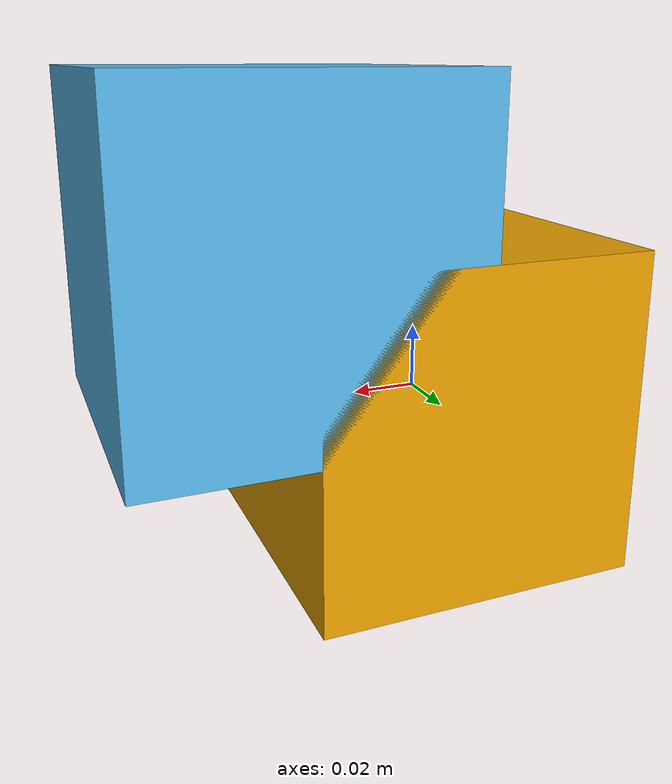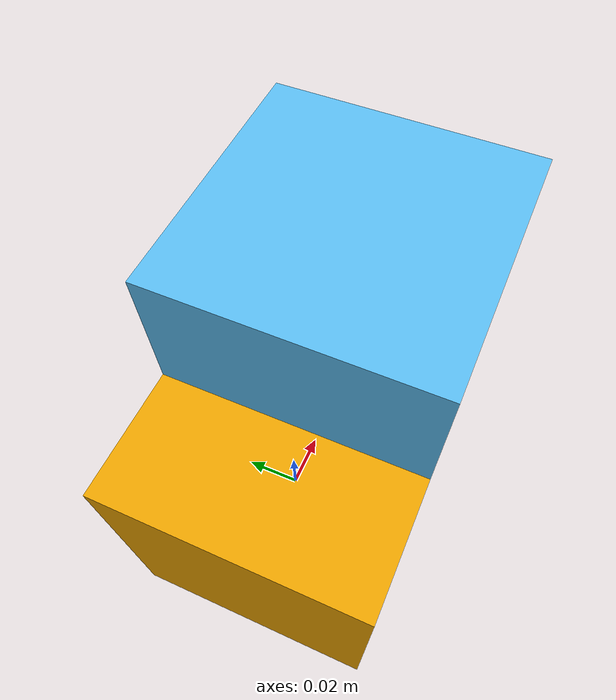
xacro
<?xml version="1.0"?>
<robot name="six_dof_cam"
	xmlns:xacro="http://ros.org/wiki/xacro">
	<xacro:include filename="$(find six_dof_cam_description)/urdf/camera/camera.xacro"/>
	<xacro:include filename="$(find six_dof_cam_description)/urdf/base/base.xacro"/>
	<xacro:include filename="$(find six_dof_cam_description)/urdf/linear_actuator/linear_actuator.xacro"/>
	<xacro:include filename="$(find six_dof_cam_description)/urdf/rotary_actuator/rotary_actuator.xacro"/>

<!-- =============== Link & Joint =============== -->
	<link name="world"/>

	<xacro:base parent="world">
		<origin xyz="0 0 0" rpy="0 0 0"/>
	</xacro:base>
	<xacro:linear_actuator prefix="x" parent="base_link">
		<origin xyz="0 0 0" rpy="0 0 0"/>
		<axis xyz="1 0 0"/>
	</xacro:linear_actuator>

	<xacro:linear_actuator prefix="y" parent="x_linear_actuator_link">
		<origin xyz="0 0 0" rpy="0 0 0"/>
		<axis xyz="0 1 0"/>
	</xacro:linear_actuator>

	<xacro:linear_actuator prefix="z" parent="y_linear_actuator_link">
		<origin xyz="0 0 0" rpy="0 0 0"/>
		<axis xyz="0 0 1"/>
	</xacro:linear_actuator>

	<xacro:rotary_actuator prefix="x" parent="z_linear_actuator_link">
		<origin xyz="0 0 0" rpy="0 0 0"/>
		<axis xyz="1 0 0"/>
	</xacro:rotary_actuator>

	<xacro:rotary_actuator prefix="y" parent="x_rotary_actuator_link">
		<origin xyz="0 0 0" rpy="0 0 0"/>
		<axis xyz="0 1 0"/>
	</xacro:rotary_actuator>

	<xacro:rotary_actuator prefix="z" parent="y_rotary_actuator_link">
		<origin xyz="0 0 0" rpy="0 0 0"/>
		<axis xyz="0 0 1"/>
	</xacro:rotary_actuator>

	<xacro:camera_model parent="z_rotary_actuator_link">
		<origin xyz="0 0 0" rpy="0 0 0"/>
	</xacro:camera_model>

<!-- ===============  Transmission =============== -->
<xacro:linear_actuator_trans prefix="x" interface="hardware_interface/EffortJointInterface"/>
<xacro:linear_actuator_trans prefix="y" interface="hardware_interface/EffortJointInterface"/>
<xacro:linear_actuator_trans prefix="z" interface="hardware_interface/EffortJointInterface"/>
<xacro:rotary_actuator_trans prefix="x" interface="hardware_interface/EffortJointInterface"/>
<xacro:rotary_actuator_trans prefix="y" interface="hardware_interface/EffortJointInterface"/>
<xacro:rotary_actuator_trans prefix="z" interface="hardware_interface/EffortJointInterface"/>

<!-- =============== Gazebo =============== -->
<gazebo>
	<plugin name="gazebo_ros_control" filename="libgazebo_ros_control.so">
		<robotNamespace>six_dof_cam</robotNamespace>
	</plugin>
</gazebo>

<!-- base -->
<xacro:base_gazebo/>

<!-- camera -->
<xacro:camera_gazebo/>

<!-- actuators -->
<xacro:rotary_actuator_gazebo prefix="x"/>
<xacro:rotary_actuator_gazebo prefix="y"/>
<xacro:rotary_actuator_gazebo prefix="z"/>
<xacro:linear_actuator_gazebo prefix="x"/>
<xacro:linear_actuator_gazebo prefix="y"/>
<xacro:linear_actuator_gazebo prefix="z"/>
</robot>

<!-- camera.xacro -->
<robot xmlns:xacro="http://ros.org/wiki/xacro">
	<xacro:include filename="$(find six_dof_cam_description)/urdf/camera/camera.gazebo.xacro"/>
	<xacro:macro name="camera_model" params="parent *joint_origin">
		<joint name="camera_joint" type="fixed">
			<xacro:insert_block name="joint_origin"/>
			<parent link="${parent}"/>
			<child link="camera_link"/>
		</joint>

		<link name="camera_link">
			<visual>
				<geometry>
					<box size="0.1 0.1 0.1"/>
				</geometry>
			</visual>
			<collision>
				<geometry>
					<box size="0.1 0.1 0.1"/>
				</geometry>
			</collision>
			<inertial>
				<origin xyz="0 0 0" rpy="0 0 0"/>
				<mass value="0.01"/>
				<inertia ixx="0.01" ixy="0.0" iyy="0.01" ixz="0.0" iyz="0.0" izz="0.01"/>
			</inertial>
		</link>
	</xacro:macro>
</robot>

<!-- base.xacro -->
<robot xmlns:xacro="http://ros.org/wiki/xacro">
	<xacro:include filename="$(find six_dof_cam_description)/urdf/base/base.gazebo.xacro"/>
	<xacro:property name="M_PI" value="3.1415926535897931" />
	<xacro:property name="velocity_scale_factor" value="1.0"/>
	<xacro:macro name="base" params="parent *joint_origin">
		<joint name="base_joint" type="fixed">
			<xacro:insert_block name="joint_origin"/>
			<parent link="${parent}"/>
			<child link="base_link"/>
		</joint>

		<link name="base_link">
			<visual>
				<geometry>
					<box size="0.1 0.1 0.1"/>
				</geometry>
				<origin rpy="0 0 0" xyz="0.05 0 0.05"/>
			</visual>
			<collision>
				<geometry>
					<box size="0.1 0.1 0.1"/>
				</geometry>
				<origin rpy="0 0 0" xyz="0.05 0 0.05"/>
			</collision>
			<inertial>
				<origin xyz="0 0 0" rpy="0 0 0"/>
				<mass value="1.0"/>
				<inertia ixx="1.0" ixy="0.0" iyy="1.0" ixz="0.0" iyz="0.0" izz="1.0"/>
			</inertial>
		</link>
	</xacro:macro>
</robot>

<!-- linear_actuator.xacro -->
<robot xmlns:xacro="http://ros.org/wiki/xacro">
	<xacro:include filename="$(find six_dof_cam_description)/urdf/linear_actuator/linear_actuator.gazebo.xacro"/>
	<xacro:include filename="$(find six_dof_cam_description)/urdf/linear_actuator/linear_actuator.transmission.xacro"/>
	<xacro:property name="M_PI" value="3.1415926535897931" />
	<xacro:property name="velocity_scale_factor" value="1.0"/>
	<xacro:macro name="linear_actuator" params="prefix parent *joint_origin *joint_axis">
		<joint name="${prefix}_linear_actuator_joint" type="prismatic">
			<xacro:insert_block name="joint_origin"/>
			<xacro:insert_block name="joint_axis"/>
			<parent link="${parent}"/>
			<child link="${prefix}_linear_actuator_link"/>
			<limit lower="-3" upper="3" effort="1000.0" velocity="100.0"/>
		</joint>

		<link name="${prefix}_linear_actuator_link">
			<inertial>
				<origin xyz="0 0 0"/>
				<mass value="1.0"/>
				<inertia ixx="1.0" ixy="0.0" iyy="1.0" ixz="0.0" iyz="0.0" izz="1.0"/>
			</inertial>
		</link>
	</xacro:macro>
</robot>

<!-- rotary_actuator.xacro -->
<robot xmlns:xacro="http://ros.org/wiki/xacro">
	<xacro:include filename="$(find six_dof_cam_description)/urdf/rotary_actuator/rotary_actuator.gazebo.xacro"/>
	<xacro:include filename="$(find six_dof_cam_description)/urdf/rotary_actuator/rotary_actuator.transmission.xacro"/>
	<xacro:property name="M_PI" value="3.1415926535897931" />
	<xacro:property name="velocity_scale_factor" value="1.0"/>
	<xacro:macro name="rotary_actuator" params="prefix parent *joint_origin *joint_axis">
		<joint name="${prefix}_rotary_actuator_joint" type="revolute">
			<xacro:insert_block name="joint_origin"/>
			<xacro:insert_block name="joint_axis"/>
			<parent link="${parent}"/>
			<child link="${prefix}_rotary_actuator_link"/>
			<limit lower="-3.14" upper="3.14" effort="1000.0" velocity="100.0"/>
		</joint>

		<link name="${prefix}_rotary_actuator_link">
			<inertial>
				<origin xyz="0 0 0"/>
				<mass value="1.0"/>
				<inertia ixx="1.0" ixy="0.0" iyy="1.0" ixz="0.0" iyz="0.0" izz="1.0"/>
			</inertial>
		</link>
	</xacro:macro>
</robot>
